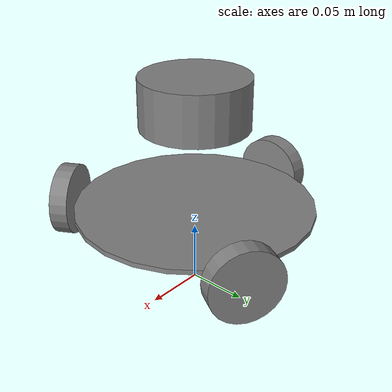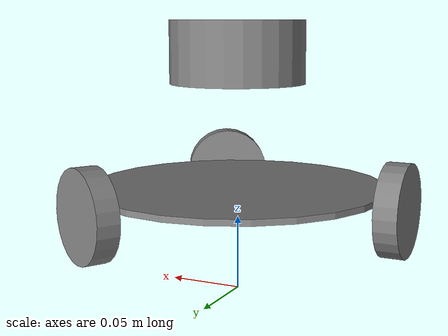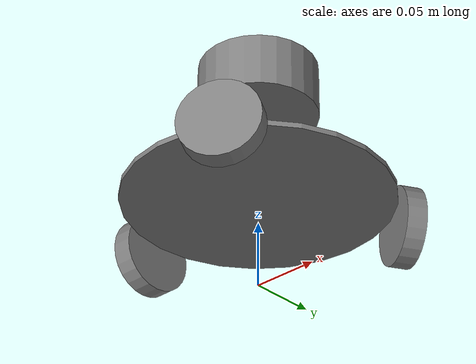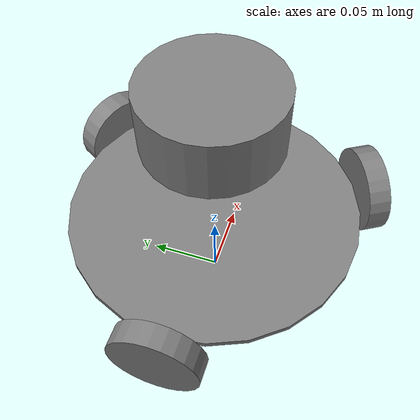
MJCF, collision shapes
<mujoco model="triton_lidar">
  <!-- compiler eulerseq="XYZ"/-->
  <!-- wheel, camara, cover, lidar, light, light_holding, board, down body, screw-->
  <compiler angle="degree" coordinate="local" eulerseq="XYZ"/>
  <default>
    <default class="unused"/>
    <joint armature="1" damping="1" limited="false"/>
  </default>
  <asset>
    <texture name="grid" type="2d" builtin="checker" rgb1="0.10000000000000001 0.20000000000000001 0.29999999999999999" rgb2="0.20000000000000001 0.29999999999999999 0.40000000000000002" width="512" height="512"/>
    <material name="grid" class="unused" texture="grid" texrepeat="1 1" texuniform="true" reflectance="0.20000000000000001"/>

    <mesh name="triton" class="unused" file="my_triton_body_standard2.stl" scale="1 1 1"/>
    <mesh name="left_wheel" class="unused" file="new_wheel.stl" />
    <mesh name="camara" class="unused" file="camara.stl" />
    <mesh name="cover" class="unused" file="my_triton_cover.stl" />
    <mesh name="lidar" class="unused" file="my_triton_lidar.stl" />
    <mesh name="light" class="unused" file="my_triton_light.stl" />
    <mesh name="light_holding" class="unused" file="my_triton_light_holding.stl" />
    <mesh name="board" class="unused" file="my_triton_board.stl" />
    <mesh name="downboard" class="unused" file="my_triton_downboard.stl" />

    <material name="black" class="unused" emission="0" specular="0.0099999997764825821" rgba="0 0 0 1"/>
    <material name="silver" class="unused" emission="0" specular="0.0099999997764825821" rgba="0.75 0.75 0.75 1"/>
    <material name="blue" class="unused" emission="0" specular="0.0099999997764825821" rgba="0.51 0.85 0.82 1"/>
    <material name="orange" class="unused" emission="0" specular="0.0099999997764825821" rgba="0.85 0.30 0.1 1"/>
    <material name="grey" class="unused" emission="0" specular="0.0099999997764825821" rgba="0.3 0.3 0.3 1"/>

  </asset>
  <worldbody>
    <light name="light_1" directional="true" diffuse=".8 .8 .8" specular=".1 .1 .1" pos="0 0 1" dir="0 0 -1"/>
    <geom name="floor" class="unused" type="plane" condim="3" size="0 0 0.050000000000000003" material="grid" pos="0 0 -1"/>

    <body name="triton" pos="0 0 0.035000000000000003" euler="0 -0 0">

      <inertial pos="0 0 0" mass="1" fullinertia="0.14583299999999999 0.14583299999999999 0.125 0 0 0"/>
      <geom name="triton_body" class="unused" type="mesh" contype="0" conaffinity="0" group="1" material="silver" pos="0 0 -0.02" euler="0 -0 -30" mesh="triton"/>

      <geom name="camara" class="unused" type="mesh" contype="0" conaffinity="0" group="1" material="grey" pos="0 0 0" euler="0 -0 -30" mesh="camara"/>
      <geom name="cover" class="unused" type="mesh" contype="0" conaffinity="0" group="1" material="blue" pos="0 0 0" euler="0 -0 -30" mesh="cover"/>

      <geom name="light" class="unused" type="mesh" contype="0" conaffinity="0" group="1" material="blue" pos="0 0 0" euler="0 -0 -30" mesh="light"/>
      <geom name="light_holding" class="unused" type="mesh" contype="0" conaffinity="0" group="1" material="orange" pos="0 0 0" euler="0 -0 -30" mesh="light_holding"/>
      <geom name="board" class="unused" type="mesh" contype="0" conaffinity="0" group="1" material="orange" pos="0 0 0" euler="0 -0 -30" mesh="board"/>
      <geom name="downboard" class="unused" type="mesh" contype="0" conaffinity="0" group="1" material="orange" pos="0 0 0" euler="0 -0 -30" mesh="downboard"/>

      <geom name="lidar" class="unused" type="mesh" contype="0" conaffinity="0" group="1" material="grey" pos="0 0 0" euler="0 -0 -30" mesh="lidar"/>
      <geom name="collision" class="unused" type="cylinder" size="0.10 0.002" group="2" friction="1 0.0050000000000000001 0.0001" pos="0 0 0.035" euler="0 -0 0"/>

      <joint name="trition_body" armature="1" damping="1" type="free"/>

      <body name="lidar" pos="0 0 -0.035000000000000003" euler="0 -0 0">
        <inertial pos="0 0 0.161" mass="0.125" fullinertia="0.001 0.001 0.001 0 0 0"/>
        <geom name="lidar_collision" class="unused" type="cylinder" group="2" size="0.045 0.0208" friction="1 0.0050000000000000001 0.0001" pos="0 0 0.161" euler="0 -0 0"/>
        <site name="hls_lfcd_lds" class="unused" pos="0 0 0.17100000000000001" euler="0 -0 0"/>
      </body>

      <body name="right_wheel_link" pos="-0.11 0 0.03" euler="0.0045263665815347721 89.95437383555452 0.0041825919044565273">
        <inertial pos="0 0 0" mass="1" fullinertia="0.14583299999999999 0.14583299999999999 0.125 0 0 0"/>
        <geom name="right_wheel_collision" class="unused" type="cylinder"  group = "2" size="0.029999999999999999 0.0074999999999999997" friction="1 0.0050000000000000001 0.0001" />
        <!--This is one of the wheels-->
        <geom name="right_visual" class="unused" type="mesh" contype="0" conaffinity="0" group="1" size="0.029999999999999999 0.0074999999999999997" material="grey" pos="0 0 0" euler="90 0 0" mesh="left_wheel"/>
        <joint name="right_wheel" class="unused" type="hinge" pos="-1.0408340855860843e-17 0 -1.3877787807814457e-17" axis="0 0 1"/>
      </body>

      <body name="back_wheel_link" pos="0.055 0.095 0.03" euler="119.99913469661091 89.954373835546534 0.00017188733800956195">
        <inertial pos="0 0 0" mass="1" fullinertia="0.14583299999999999 0.14583299999999999 0.125 0 0 0"/>
        <geom name="back_wheel_collision" class="unused" type="cylinder"  size="0.029999999999999999 0.0074999999999999997" friction="1 0.0050000000000000001 0.0001" />
        <geom name="back_visual" class="unused" type="mesh" contype="0" conaffinity="0" group="1" size="0.029999999999999999 0.0074999999999999997" material="grey" pos="0 0 0" euler="90 0 0" mesh="left_wheel" />
        <joint name="back_wheel" class="unused" type="hinge" pos="0 -1.7347234759768071e-17 1.3877787807814457e-17" axis="0 0 1"/>
      </body>

      <body name="left_wheel_link" pos="0.055 -0.095 0.03" euler="-119.9928321608599 89.954373835546534 0.0052712117170394205">
        <inertial pos="0 0 0" mass="1" fullinertia="0.14583299999999999 0.14583299999999999 0.125 0 0 0"/>
        <geom name="left_wheel_collision" class="unused" type="cylinder"  size="0.029999999999999999 0.0074999999999999997" friction="1 0.0050000000000000001 0.0001" />
        <geom name="left_visual" class="unused" type="mesh" contype="0" conaffinity="0" group="1" size="0.029999999999999999 0.0074999999999999997" material="grey" pos="0 0 0" euler="90 0 0" mesh="left_wheel"/>
        <joint name="left_wheel" class="unused"  type="hinge" pos="6.9388939039072284e-18 -3.1225022567582528e-17 -1.3877787807814457e-17" axis="0 0 1"/>
      </body>
    </body>
  </worldbody>

  <tendon>
    <fixed name = "go_foward">
      <joint joint = "right_wheel" coef = "1"/>
      <joint joint = "left_wheel" coef = "-1"/>
    </fixed>

    <fixed name = "turn">
      <joint joint = "right_wheel" coef = "1"/>
      <joint joint = "left_wheel" coef = "1"/>
      <joint joint = "back_wheel" coef = "1"/>
    </fixed>

  </tendon>

  <actuator>
    <motor name="right_wheel" gear="3" joint="right_wheel"/>
    <motor name="back_wheel" gear="3" joint="back_wheel"/>
    <motor name="left_wheel" gear="3" joint="left_wheel"/>

    <motor name="go_forward" tendon="go_foward" gear="5"/>
    <motor name="turn" tendon="turn" gear="3"/>

  </actuator>
</mujoco>
